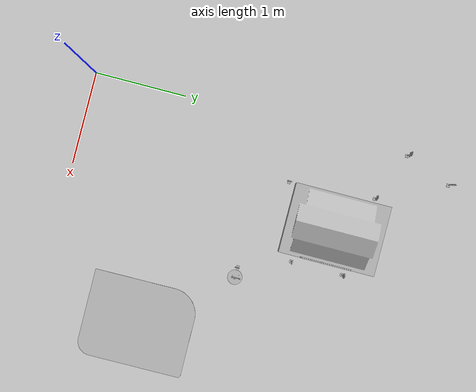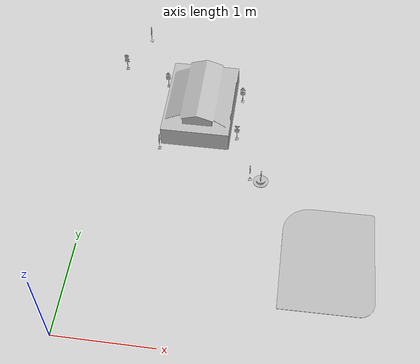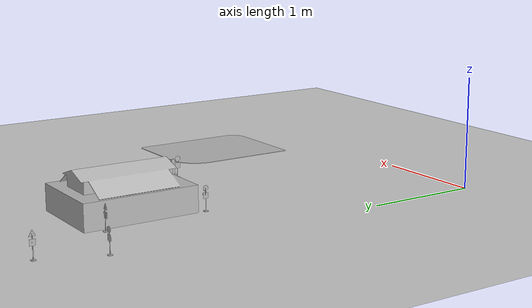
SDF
<sdf version="1.6">
 <world name="default">
  <model name="ground_plane">
   <static>1</static>
   <link name="link">
    <collision name="collision">
     <geometry><plane><normal>0 0 1</normal><size>100 100</size></plane></geometry>
     <surface><friction><ode><mu>100</mu><mu2>50</mu2></ode></friction></surface>
    </collision>
    <visual name="visual">
     <cast_shadows>0</cast_shadows>
     <geometry><plane><normal>0 0 1</normal><size>100 100</size></plane></geometry>
     <material>
      <script><uri>file://media/materials/scripts/gazebo.material</uri><name>Gazebo/Grey</name></script>
     </material>
    </visual>
   </link>
  </model>
  <model name="velocidad50_qr">
   <link name="link_14">
    <inertial>
     <mass>0.02</mass>
     <inertia>
      <ixx>0.166667</ixx>
      <ixy>0</ixy>
      <ixz>0</ixz>
      <iyy>0.166667</iyy>
      <iyz>0</iyz>
      <izz>0.166667</izz>
     </inertia>
    </inertial>
    <visual name="visual">
     <geometry>
      <mesh><uri>file://models/stl/SENALES_QR/VELOCIDAD50/velo50_qr.dae</uri><scale>1 1 1</scale></mesh>
     </geometry>
    </visual>
    <collision name="collision">
     <geometry>
      <mesh><uri>file://models/stl/SENALES_QR/VELOCIDAD50/velo50_qr.dae</uri><scale>1 1 1</scale></mesh>
     </geometry>
     <surface>
      <friction>
       <ode><mu>1</mu><mu2>1</mu2><fdir1>0 0 0</fdir1><slip1>0</slip1><slip2>0</slip2></ode>
       <torsional>
        <coefficient>1</coefficient>
        <patch_radius>0</patch_radius>
        <surface_radius>0</surface_radius>
        <use_patch_radius>1</use_patch_radius>
        <ode><slip>0</slip></ode>
       </torsional>
      </friction>
      <bounce><restitution_coefficient>0</restitution_coefficient><threshold>1e+06</threshold></bounce>
      <contact>
       <collide_without_contact>0</collide_without_contact>
       <collide_without_contact_bitmask>1</collide_without_contact_bitmask>
       <collide_bitmask>1</collide_bitmask>
       <ode>
        <soft_cfm>0</soft_cfm>
        <soft_erp>0.2</soft_erp>
        <kp>1e+13</kp>
        <kd>1</kd>
        <max_vel>0.01</max_vel>
        <min_depth>0</min_depth>
       </ode>
       <bullet>
        <split_impulse>1</split_impulse>
        <split_impulse_penetration_threshold>-0.01</split_impulse_penetration_threshold>
        <soft_cfm>0</soft_cfm>
        <soft_erp>0.2</soft_erp>
        <kp>1e+13</kp>
        <kd>1</kd>
       </bullet>
      </contact>
     </surface>
    </collision>
   </link>
   <static>0</static>
   <pose>0.020585 3.47057 0.012793 -1.3e-05 -0.000245 -3.13702</pose>
  </model>
  <model name="peatones_qr_0">
   <link name="link_6">
    <inertial>
     <mass>0.02</mass>
     <inertia>
      <ixx>0.166667</ixx>
      <ixy>0</ixy>
      <ixz>0</ixz>
      <iyy>0.166667</iyy>
      <iyz>0</iyz>
      <izz>0.166667</izz>
     </inertia>
    </inertial>
    <visual name="visual">
     <geometry>
      <mesh><uri>file://models/stl/SENALES_QR/PEATONES/peatones_qr.dae</uri><scale>1 1 1</scale></mesh>
     </geometry>
    </visual>
    <collision name="collision">
     <geometry>
      <mesh><uri>file://models/stl/SENALES_QR/PEATONES/peatones_qr.dae</uri><scale>1 1 1</scale></mesh>
     </geometry>
     <surface>
      <friction>
       <ode><mu>1</mu><mu2>1</mu2><fdir1>0 0 0</fdir1><slip1>0</slip1><slip2>0</slip2></ode>
       <torsional>
        <coefficient>1</coefficient>
        <patch_radius>0</patch_radius>
        <surface_radius>0</surface_radius>
        <use_patch_radius>1</use_patch_radius>
        <ode><slip>0</slip></ode>
       </torsional>
      </friction>
      <bounce><restitution_coefficient>0</restitution_coefficient><threshold>1e+06</threshold></bounce>
      <contact>
       <collide_without_contact>0</collide_without_contact>
       <collide_without_contact_bitmask>1</collide_without_contact_bitmask>
       <collide_bitmask>1</collide_bitmask>
       <ode>
        <soft_cfm>0</soft_cfm>
        <soft_erp>0.2</soft_erp>
        <kp>1e+13</kp>
        <kd>1</kd>
        <max_vel>0.01</max_vel>
        <min_depth>0</min_depth>
       </ode>
       <bullet>
        <split_impulse>1</split_impulse>
        <split_impulse_penetration_threshold>-0.01</split_impulse_penetration_threshold>
        <soft_cfm>0</soft_cfm>
        <soft_erp>0.2</soft_erp>
        <kp>1e+13</kp>
        <kd>1</kd>
       </bullet>
      </contact>
     </surface>
    </collision>
   </link>
   <static>0</static>
   <pose>1.4378 3.11152 0.012852 0.001017 -0.00282 3.13618</pose>
  </model>
  <model name="ceda_qr_0">
   <link name="link_0">
    <inertial>
     <mass>0.02</mass>
     <inertia>
      <ixx>0.166667</ixx>
      <ixy>0</ixy>
      <ixz>0</ixz>
      <iyy>0.166667</iyy>
      <iyz>0</iyz>
      <izz>0.166667</izz>
     </inertia>
    </inertial>
    <visual name="visual">
     <geometry><mesh><uri>file://models/stl/SENALES_QR/CEDA/ceda_qr.dae</uri><scale>1 1 1</scale></mesh></geometry>
    </visual>
    <collision name="collision">
     <geometry><mesh><uri>file://models/stl/SENALES_QR/CEDA/ceda_qr.dae</uri><scale>1 1 1</scale></mesh></geometry>
     <surface>
      <friction>
       <ode><mu>1</mu><mu2>1</mu2><fdir1>0 0 0</fdir1><slip1>0</slip1><slip2>0</slip2></ode>
       <torsional>
        <coefficient>1</coefficient>
        <patch_radius>0</patch_radius>
        <surface_radius>0</surface_radius>
        <use_patch_radius>1</use_patch_radius>
        <ode><slip>0</slip></ode>
       </torsional>
      </friction>
      <bounce><restitution_coefficient>0</restitution_coefficient><threshold>1e+06</threshold></bounce>
      <contact>
       <collide_without_contact>0</collide_without_contact>
       <collide_without_contact_bitmask>1</collide_without_contact_bitmask>
       <collide_bitmask>1</collide_bitmask>
       <ode>
        <soft_cfm>0</soft_cfm>
        <soft_erp>0.2</soft_erp>
        <kp>1e+13</kp>
        <kd>1</kd>
        <max_vel>0.01</max_vel>
        <min_depth>0</min_depth>
       </ode>
       <bullet>
        <split_impulse>1</split_impulse>
        <split_impulse_penetration_threshold>-0.01</split_impulse_penetration_threshold>
        <soft_cfm>0</soft_cfm>
        <soft_erp>0.2</soft_erp>
        <kp>1e+13</kp>
        <kd>1</kd>
       </bullet>
      </contact>
     </surface>
    </collision>
   </link>
   <static>0</static>
   <pose>1.43736 2.54785 0.012779 7e-06 -9e-06 3.13292</pose>
  </model>
  <model name="peligro_drcha_qr">
   <link name="link_7">
    <inertial>
     <mass>0.02</mass>
     <inertia>
      <ixx>0.166667</ixx>
      <ixy>0</ixy>
      <ixz>0</ixz>
      <iyy>0.166667</iyy>
      <iyz>0</iyz>
      <izz>0.166667</izz>
     </inertia>
    </inertial>
    <visual name="visual">
     <geometry>
      <mesh><uri>file://models/stl/SENALES_QR/PELIGRO DERECHA/pelgr_dcha_qr.dae</uri><scale>1 1 1</scale></mesh>
     </geometry>
    </visual>
    <collision name="collision">
     <geometry>
      <mesh><uri>file://models/stl/SENALES_QR/PELIGRO DERECHA/pelgr_dcha_qr.dae</uri><scale>1 1 1</scale></mesh>
     </geometry>
     <surface>
      <friction>
       <ode><mu>1</mu><mu2>1</mu2><fdir1>0 0 0</fdir1><slip1>0</slip1><slip2>0</slip2></ode>
       <torsional>
        <coefficient>1</coefficient>
        <patch_radius>0</patch_radius>
        <surface_radius>0</surface_radius>
        <use_patch_radius>1</use_patch_radius>
        <ode><slip>0</slip></ode>
       </torsional>
      </friction>
      <bounce><restitution_coefficient>0</restitution_coefficient><threshold>1e+06</threshold></bounce>
      <contact>
       <collide_without_contact>0</collide_without_contact>
       <collide_without_contact_bitmask>1</collide_without_contact_bitmask>
       <collide_bitmask>1</collide_bitmask>
       <ode>
        <soft_cfm>0</soft_cfm>
        <soft_erp>0.2</soft_erp>
        <kp>1e+13</kp>
        <kd>1</kd>
        <max_vel>0.01</max_vel>
        <min_depth>0</min_depth>
       </ode>
       <bullet>
        <split_impulse>1</split_impulse>
        <split_impulse_penetration_threshold>-0.01</split_impulse_penetration_threshold>
        <soft_cfm>0</soft_cfm>
        <soft_erp>0.2</soft_erp>
        <kp>1e+13</kp>
        <kd>1</kd>
       </bullet>
      </contact>
     </surface>
    </collision>
   </link>
   <static>0</static>
   <pose>0.218554 3.97999 0.012889 0.001744 -0.004375 1.60988</pose>
  </model>
  <model name="rotonda_qr_2">
   <link name="link_9">
    <inertial>
     <mass>0.02</mass>
     <inertia>
      <ixx>0.166667</ixx>
      <ixy>0</ixy>
      <ixz>0</ixz>
      <iyy>0.166667</iyy>
      <iyz>0</iyz>
      <izz>0.166667</izz>
     </inertia>
    </inertial>
    <visual name="visual">
     <geometry>
      <mesh><uri>file://models/stl/SENALES_QR/ROTONDA/rotonda_qr.dae</uri><scale>1 1 1</scale></mesh>
     </geometry>
    </visual>
    <collision name="collision">
     <geometry>
      <mesh><uri>file://models/stl/SENALES_QR/ROTONDA/rotonda_qr.dae</uri><scale>1 1 1</scale></mesh>
     </geometry>
     <surface>
      <friction>
       <ode><mu>1</mu><mu2>1</mu2><fdir1>0 0 0</fdir1><slip1>0</slip1><slip2>0</slip2></ode>
       <torsional>
        <coefficient>1</coefficient>
        <patch_radius>0</patch_radius>
        <surface_radius>0</surface_radius>
        <use_patch_radius>1</use_patch_radius>
        <ode><slip>0</slip></ode>
       </torsional>
      </friction>
      <bounce><restitution_coefficient>0</restitution_coefficient><threshold>1e+06</threshold></bounce>
      <contact>
       <collide_without_contact>0</collide_without_contact>
       <collide_without_contact_bitmask>1</collide_without_contact_bitmask>
       <collide_bitmask>1</collide_bitmask>
       <ode>
        <soft_cfm>0</soft_cfm>
        <soft_erp>0.2</soft_erp>
        <kp>1e+13</kp>
        <kd>1</kd>
        <max_vel>0.01</max_vel>
        <min_depth>0</min_depth>
       </ode>
       <bullet>
        <split_impulse>1</split_impulse>
        <split_impulse_penetration_threshold>-0.01</split_impulse_penetration_threshold>
        <soft_cfm>0</soft_cfm>
        <soft_erp>0.2</soft_erp>
        <kp>1e+13</kp>
        <kd>1</kd>
       </bullet>
      </contact>
     </surface>
    </collision>
   </link>
   <static>0</static>
   <pose>1.63904 2.00761 0.012965 0.011077 -2.6e-05 -1.6085</pose>
  </model>
  <model name="parar_qr_2">
   <link name="link_4">
    <inertial>
     <mass>0.02</mass>
     <inertia>
      <ixx>0.166667</ixx>
      <ixy>0</ixy>
      <ixz>0</ixz>
      <iyy>0.166667</iyy>
      <iyz>0</iyz>
      <izz>0.166667</izz>
     </inertia>
    </inertial>
    <visual name="visual">
     <geometry>
      <mesh><uri>file://models/stl/SENALES_QR/PARAR/parar_qr.dae</uri><scale>1 1 1</scale></mesh>
     </geometry>
    </visual>
    <collision name="collision">
     <geometry>
      <mesh><uri>file://models/stl/SENALES_QR/PARAR/parar_qr.dae</uri><scale>1 1 1</scale></mesh>
     </geometry>
     <surface>
      <friction>
       <ode><mu>1</mu><mu2>1</mu2><fdir1>0 0 0</fdir1><slip1>0</slip1><slip2>0</slip2></ode>
       <torsional>
        <coefficient>1</coefficient>
        <patch_radius>0</patch_radius>
        <surface_radius>0</surface_radius>
        <use_patch_radius>1</use_patch_radius>
        <ode><slip>0</slip></ode>
       </torsional>
      </friction>
      <bounce><restitution_coefficient>0</restitution_coefficient><threshold>1e+06</threshold></bounce>
      <contact>
       <collide_without_contact>0</collide_without_contact>
       <collide_without_contact_bitmask>1</collide_without_contact_bitmask>
       <collide_bitmask>1</collide_bitmask>
       <ode>
        <soft_cfm>0</soft_cfm>
        <soft_erp>0.2</soft_erp>
        <kp>1e+13</kp>
        <kd>1</kd>
        <max_vel>0.01</max_vel>
        <min_depth>0</min_depth>
       </ode>
       <bullet>
        <split_impulse>1</split_impulse>
        <split_impulse_penetration_threshold>-0.01</split_impulse_penetration_threshold>
        <soft_cfm>0</soft_cfm>
        <soft_erp>0.2</soft_erp>
        <kp>1e+13</kp>
        <kd>1</kd>
       </bullet>
      </contact>
     </surface>
    </collision>
   </link>
   <static>0</static>
   <pose>0.615511 2.31178 0.012778 2e-06 -3e-06 1.57802</pose>
  </model>
  <model name="peligro_izqu_qr_3">
   <link name="link_8">
    <inertial>
     <mass>0.02</mass>
     <inertia>
      <ixx>0.166667</ixx>
      <ixy>0</ixy>
      <ixz>0</ixz>
      <iyy>0.166667</iyy>
      <iyz>0</iyz>
      <izz>0.166667</izz>
     </inertia>
    </inertial>
    <visual name="visual">
     <geometry>
      <mesh><uri>file://models/stl/SENALES_QR/PELIGRO IZQUIERDA/peligr_izq_qr.dae</uri><scale>1 1 1</scale></mesh>
     </geometry>
    </visual>
    <collision name="collision">
     <geometry>
      <mesh><uri>file://models/stl/SENALES_QR/PELIGRO IZQUIERDA/peligr_izq_qr.dae</uri><scale>1 1 1</scale></mesh>
     </geometry>
     <surface>
      <friction>
       <ode><mu>1</mu><mu2>1</mu2><fdir1>0 0 0</fdir1><slip1>0</slip1><slip2>0</slip2></ode>
       <torsional>
        <coefficient>1</coefficient>
        <patch_radius>0</patch_radius>
        <surface_radius>0</surface_radius>
        <use_patch_radius>1</use_patch_radius>
        <ode><slip>0</slip></ode>
       </torsional>
      </friction>
      <bounce><restitution_coefficient>0</restitution_coefficient><threshold>1e+06</threshold></bounce>
      <contact>
       <collide_without_contact>0</collide_without_contact>
       <collide_without_contact_bitmask>1</collide_without_contact_bitmask>
       <collide_bitmask>1</collide_bitmask>
       <ode>
        <soft_cfm>0</soft_cfm>
        <soft_erp>0.2</soft_erp>
        <kp>1e+13</kp>
        <kd>1</kd>
        <max_vel>0.01</max_vel>
        <min_depth>0</min_depth>
       </ode>
       <bullet>
        <split_impulse>1</split_impulse>
        <split_impulse_penetration_threshold>-0.01</split_impulse_penetration_threshold>
        <soft_cfm>0</soft_cfm>
        <soft_erp>0.2</soft_erp>
        <kp>1e+13</kp>
        <kd>1</kd>
       </bullet>
      </contact>
     </surface>
    </collision>
   </link>
   <static>0</static>
   <pose>0.555737 3.24701 0.012778 -1e-06 -8e-06 0</pose>
  </model>
  <model name="super">
   <link name="link_0">
    <inertial>
     <mass>1</mass>
     <inertia>
      <ixx>0.166667</ixx>
      <ixy>0</ixy>
      <ixz>0</ixz>
      <iyy>0.166667</iyy>
      <iyz>0</iyz>
      <izz>0.166667</izz>
     </inertia>
    </inertial>
    <visual name="visual">
     <geometry>
      <mesh><uri>file://models/stl/SUPERMARKET_DAE/supermarket.dae</uri><scale>1 1 1</scale></mesh>
     </geometry>
     <material><shader type="pixel"><normal_map>__default__</normal_map></shader></material>
    </visual>
    <collision name="collision">
     <pose>0.51 -0.365 0 0 -0 0</pose>
     <geometry><box><size>1.03 0.75 0.89</size></box></geometry>
     <surface>
      <friction>
       <ode><mu>1</mu><mu2>1</mu2><fdir1>0 0 0</fdir1><slip1>0</slip1><slip2>0</slip2></ode>
       <torsional>
        <coefficient>1</coefficient>
        <patch_radius>0</patch_radius>
        <surface_radius>0</surface_radius>
        <use_patch_radius>1</use_patch_radius>
        <ode><slip>0</slip></ode>
       </torsional>
      </friction>
      <bounce><restitution_coefficient>0</restitution_coefficient><threshold>1e+06</threshold></bounce>
      <contact>
       <collide_without_contact>0</collide_without_contact>
       <collide_without_contact_bitmask>1</collide_without_contact_bitmask>
       <collide_bitmask>1</collide_bitmask>
       <ode>
        <soft_cfm>0</soft_cfm>
        <soft_erp>0.2</soft_erp>
        <kp>1e+13</kp>
        <kd>1</kd>
        <max_vel>0.01</max_vel>
        <min_depth>0</min_depth>
       </ode>
       <bullet>
        <split_impulse>1</split_impulse>
        <split_impulse_penetration_threshold>-0.01</split_impulse_penetration_threshold>
        <soft_cfm>0</soft_cfm>
        <soft_erp>0.2</soft_erp>
        <kp>1e+13</kp>
        <kd>1</kd>
       </bullet>
      </contact>
     </surface>
    </collision>
   </link>
   <static>1</static>
   <pose>0.624603 2.38082 0 0 -0 1.5708</pose>
  </model>
  <model name="rotonda">
   <link name="link_0">
    <inertial>
     <mass>50</mass>
     <inertia>
      <ixx>0.166667</ixx>
      <ixy>0</ixy>
      <ixz>0</ixz>
      <iyy>0.166667</iyy>
      <iyz>0</iyz>
      <izz>0.166667</izz>
     </inertia>
    </inertial>
    <visual name="visual">
     <geometry><mesh><uri>file://models/stl/rotonda/Rotonda.dae</uri><scale>1 1 1</scale></mesh></geometry>
     <material><shader type="vertex"><normal_map>__default__</normal_map></shader></material>
    </visual>
    <collision name="collision">
     <pose>0.07 -0.09 -0.08 0 -0 0</pose>
     <geometry><cylinder><radius>0.07</radius><length>1</length></cylinder></geometry>
     <surface>
      <friction>
       <ode><mu>1</mu><mu2>1</mu2><fdir1>0 0 0</fdir1><slip1>0</slip1><slip2>0</slip2></ode>
       <torsional>
        <coefficient>1</coefficient>
        <patch_radius>0</patch_radius>
        <surface_radius>0</surface_radius>
        <use_patch_radius>1</use_patch_radius>
        <ode><slip>0</slip></ode>
       </torsional>
      </friction>
      <bounce><restitution_coefficient>0</restitution_coefficient><threshold>1e+06</threshold></bounce>
      <contact>
       <collide_without_contact>0</collide_without_contact>
       <collide_without_contact_bitmask>1</collide_without_contact_bitmask>
       <collide_bitmask>1</collide_bitmask>
       <ode>
        <soft_cfm>0</soft_cfm>
        <soft_erp>0.2</soft_erp>
        <kp>1e+13</kp>
        <kd>1</kd>
        <max_vel>0.01</max_vel>
        <min_depth>0</min_depth>
       </ode>
       <bullet>
        <split_impulse>1</split_impulse>
        <split_impulse_penetration_threshold>-0.01</split_impulse_penetration_threshold>
        <soft_cfm>0</soft_cfm>
        <soft_erp>0.2</soft_erp>
        <kp>1e+13</kp>
        <kd>1</kd>
       </bullet>
      </contact>
     </surface>
    </collision>
   </link>
   <static>1</static>
   <pose>1.67427 2.0836 0 0 -0 0</pose>
  </model>
  <model name="big_cesped_0">
   <link name="link_0">
    <inertial>
     <mass>50</mass>
     <inertia>
      <ixx>0.166667</ixx>
      <ixy>0</ixy>
      <ixz>0</ixz>
      <iyy>0.166667</iyy>
      <iyz>0</iyz>
      <izz>0.166667</izz>
     </inertia>
    </inertial>
    <visual name="visual">
     <geometry><mesh><uri>file://models/stl/Big_cesped/cesped_big.dae</uri><scale>1 1 1</scale></mesh></geometry>
     <material><shader type="vertex"><normal_map>__default__</normal_map></shader></material>
    </visual>
    <collision name="collision">
     <pose>-2.47 0.55 0.23 1.57 -0 0</pose>
     <geometry><box><size>0.72 0.02 1.01</size></box></geometry>
     <surface>
      <friction>
       <ode><mu>1</mu><mu2>1</mu2><fdir1>0 0 0</fdir1><slip1>0</slip1><slip2>0</slip2></ode>
       <torsional>
        <coefficient>1</coefficient>
        <patch_radius>0</patch_radius>
        <surface_radius>0</surface_radius>
        <use_patch_radius>1</use_patch_radius>
        <ode><slip>0</slip></ode>
       </torsional>
      </friction>
      <bounce><restitution_coefficient>0</restitution_coefficient><threshold>1e+06</threshold></bounce>
      <contact>
       <collide_without_contact>0</collide_without_contact>
       <collide_without_contact_bitmask>1</collide_without_contact_bitmask>
       <collide_bitmask>1</collide_bitmask>
       <ode>
        <soft_cfm>0</soft_cfm>
        <soft_erp>0.2</soft_erp>
        <kp>1e+13</kp>
        <kd>1</kd>
        <max_vel>0.01</max_vel>
        <min_depth>0</min_depth>
       </ode>
       <bullet>
        <split_impulse>1</split_impulse>
        <split_impulse_penetration_threshold>-0.01</split_impulse_penetration_threshold>
        <soft_cfm>0</soft_cfm>
        <soft_erp>0.2</soft_erp>
        <kp>1e+13</kp>
        <kd>1</kd>
       </bullet>
      </contact>
     </surface>
    </collision>
   </link>
   <static>1</static>
   <pose>0.767329 2.16245 0.012362 0 0 -3.13334</pose>
  </model>
 </world>
</sdf>
